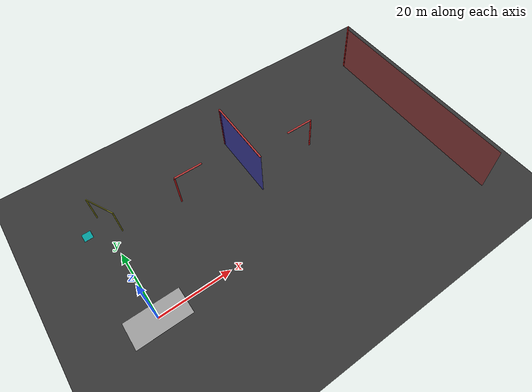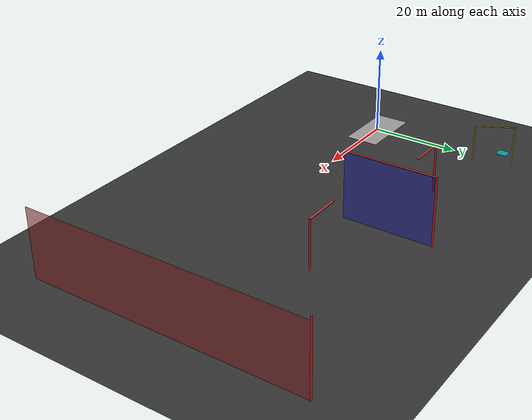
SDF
<sdf version="1.9">
 <world name="goaero_mission3">
  <physics name="1ms" type="ignore">
   <max_step_size>0.001</max_step_size>
   <real_time_factor>1.0</real_time_factor>
  </physics>
  <plugin filename="gz-sim-physics-system" name="gz::sim::systems::Physics"/>
  <plugin filename="gz-sim-sensors-system" name="gz::sim::systems::Sensors">
   <render_engine>ogre2</render_engine>
  </plugin>
  <plugin filename="gz-sim-user-commands-system" name="gz::sim::systems::UserCommands"/>
  <plugin filename="gz-sim-scene-broadcaster-system" name="gz::sim::systems::SceneBroadcaster"/>
  <plugin filename="gz-sim-joint-state-publisher-system" name="gz::sim::systems::JointStatePublisher"/>
  <plugin filename="gz-sim-imu-system" name="gz::sim::systems::Imu"/>
  <plugin filename="gz-sim-navsat-system" name="gz::sim::systems::NavSat"/>
  <plugin filename="gz-sim-particle-emitter-system" name="gz::sim::systems::ParticleEmitter"/>
  <scene><ambient>1.0 1.0 1.0</ambient><background>0.8 0.8 0.8</background></scene>
  <spherical_coordinates>
   <latitude_deg>-35.363262</latitude_deg>
   <longitude_deg>149.165237</longitude_deg>
   <elevation>584</elevation>
   <heading_deg>0</heading_deg>
   <surface_model>EARTH_WGS84</surface_model>
  </spherical_coordinates>
  <light type="directional" name="sun">
   <pose>0 0 10 0 0 0</pose>
   <diffuse>0.8 0.8 0.8 1</diffuse>
   <specular>0.8 0.8 0.8 1</specular>
   <attenuation>
    <range>1000</range>
    <constant>0.9</constant>
    <linear>0.01</linear>
    <quadratic>0.001</quadratic>
   </attenuation>
   <direction>-0.5 0.1 -0.9</direction>
  </light>
  <model name="axes">
   <static>1</static>
   <link name="link">
    <sensor name="navsat_sensor" type="navsat"><always_on>1</always_on><update_rate>60</update_rate></sensor>
   </link>
  </model>
  <model name="The_Base">
   <static>true</static>
   <link name="base_link">
    <visual name="base_visual">
     <geometry><box><size>15.0 7.6 0.02</size></box></geometry>
     <material>
      <script><uri>file://media/materials/scripts/gazebo.material</uri><name>Gazebo/Grey</name></script>
     </material>
    </visual>
    <collision name="base_collision">
     <geometry><box><size>15.0 7.6 0.02</size></box></geometry>
     <pose>0 0 0.01 0 0 0</pose>
    </collision>
   </link>
  </model>
  <model name="obstacle_1_pylon">
   <static>true</static>
   <pose degrees="true">90 40 0 0 0 -90</pose>
   <link name="pylon1_link">
    <visual name="pylon1_visual">
     <geometry><cylinder><radius>0.2</radius><length>16.0</length></cylinder></geometry>
     <pose>0 0 8.0 0 0 0</pose>
     <material><ambient>0.8 0.1 0.1 1</ambient><diffuse>0.8 0.1 0.1 1</diffuse></material>
    </visual>
    <collision name="pylon1_collision">
     <geometry><cylinder><radius>0.2</radius><length>16</length></cylinder></geometry>
     <pose>0 0 8.0 0 0 0</pose>
    </collision>
   </link>
   <link name="pylon1_wall">
    <visual name="pylon1_wall_visual">
     <geometry><box><size>60 0.1 15</size></box></geometry>
     <pose>30 0 7.5 0 0 0</pose>
     <material><ambient>0.7 0.2 0.2 0.6</ambient><diffuse>0.7 0.2 0.2 0.6</diffuse></material>
    </visual>
    <collision name="pylon1_wall_collision">
     <geometry><box><size>40 0.1 15</size></box></geometry>
     <pose>20 0 7.5 0 0 0</pose>
    </collision>
   </link>
  </model>
  <model name="obstacle_2_pylon">
   <static>true</static>
   <pose degrees="true">60 20 0 0 0 180</pose>
   <link name="pylon2_link">
    <visual name="pylon2_visual">
     <geometry><cylinder><radius>0.2</radius><length>11.0</length></cylinder></geometry>
     <pose>0 0 5.5 0 0 0</pose>
     <material><ambient>0.8 0.1 0.1 1</ambient><diffuse>0.8 0.1 0.1 1</diffuse></material>
    </visual>
    <collision name="pylon2_collision">
     <geometry><cylinder><radius>0.2</radius><length>11.0</length></cylinder></geometry>
     <pose>0 0 5.5 0 0 0</pose>
    </collision>
   </link>
   <link name="pylon2_ceiling">
    <visual name="pylon2_ceiling_visual">
     <geometry><box><size>8 0.5 0.1</size></box></geometry>
     <pose>4 0 11.0 0 0 0</pose>
     <material><ambient>0.7 0.2 0.2 1</ambient><diffuse>0.7 0.2 0.2 1</diffuse></material>
    </visual>
    <collision name="pylon2_ceiling_collision">
     <geometry><box><size>8 0.5 0.1</size></box></geometry>
     <pose>4 0 11.0 0 0 0</pose>
    </collision>
   </link>
  </model>
  <model name="obstacle_3_virtual_wall">
   <static>true</static>
   <pose degrees="true">40 25 0 0 0 90</pose>
   <link name="wall_link">
    <visual name="wall_visual">
     <geometry><box><size>20 0.2 15.0</size></box></geometry>
     <pose>0 0 7.5 0 0 0</pose>
     <material><ambient>0.2 0.2 0.8 0.6</ambient><diffuse>0.2 0.2 0.8 0.6</diffuse></material>
    </visual>
    <collision name="wall_collision">
     <geometry><box><size>10.0 0.2 15.0</size></box></geometry>
     <pose>0 0 7.5 0 0 0</pose>
    </collision>
   </link>
   <link name="pylon3_link">
    <visual name="pylon3_visual">
     <geometry><cylinder><radius>0.2</radius><length>15.0</length></cylinder></geometry>
     <pose>10 0 7.5 0 0 0</pose>
     <material><ambient>0.8 0.1 0.1 1</ambient><diffuse>0.8 0.1 0.1 1</diffuse></material>
    </visual>
    <collision name="pylon3_collision">
     <geometry><cylinder><radius>0.2</radius><length>15.0</length></cylinder></geometry>
     <pose>0 0 5.5 0 0 0</pose>
    </collision>
   </link>
   <link name="pylon3_ceiling">
    <visual name="pylon3_ceiling_visual">
     <geometry><box><size>20 0.5 0.1</size></box></geometry>
     <pose>0 0 15.0 0 0 0</pose>
     <material><ambient>0.7 0.2 0.2 1</ambient><diffuse>0.7 0.2 0.2 1</diffuse></material>
    </visual>
    <collision name="pylon3_ceiling_collision">
     <geometry><box><size>20 0.5 0.1</size></box></geometry>
     <pose>0 0 15.0 0 0 0</pose>
    </collision>
   </link>
  </model>
  <model name="obstacle_4_pylon">
   <static>true</static>
   <pose degrees="true">20 25 0 0 0 0</pose>
   <link name="pylon4_link">
    <visual name="pylon4_visual">
     <geometry><cylinder><radius>0.2</radius><length>11.0</length></cylinder></geometry>
     <pose>0 0 5.5 0 0 0</pose>
     <material><ambient>0.8 0.1 0.1 1</ambient><diffuse>0.8 0.1 0.1 1</diffuse></material>
    </visual>
    <collision name="pylon4_collision">
     <geometry><cylinder><radius>0.2</radius><length>11.0</length></cylinder></geometry>
     <pose>0 0 5.5 0 0 0</pose>
    </collision>
   </link>
   <link name="pylon4_ceiling">
    <visual name="pylon4_ceiling_visual">
     <geometry><box><size>8 0.5 0.1</size></box></geometry>
     <pose>4 0 11.0 0 0 0</pose>
     <material><ambient>0.7 0.2 0.2 1</ambient><diffuse>0.7 0.2 0.2 1</diffuse></material>
    </visual>
    <collision name="pylon4_ceiling_collision">
     <geometry><box><size>8 0.5 0.1</size></box></geometry>
     <pose>4 0 11.0 0 0 0</pose>
    </collision>
   </link>
  </model>
  <model name="The_Spot">
   <static>true</static>
   <pose degrees="true">-5 30 0 0 0 90</pose>
   <link name="spot_link">
    <visual name="spot_visual">
     <geometry><box><size>2.4 2.4 0.02</size></box></geometry>
     <pose>0 0 0.01 0 0 0</pose>
     <material><ambient>0.0 0.6 0.6 1</ambient><diffuse>0.0 0.6 0.6 1</diffuse></material>
    </visual>
    <collision name="spot_collision">
     <geometry><box><size>2.4 2.4 0.02</size></box></geometry>
     <pose>-5 0 0.01 0 0 0</pose>
    </collision>
   </link>
  </model>
  <model name="spot_gate">
   <static>true</static>
   <pose degrees="True">1.2 30 0 0 0 90</pose>
   <link name="gate_post_left">
    <visual name="post_left_visual">
     <geometry><cylinder><radius>0.15</radius><length>9.0</length></cylinder></geometry>
     <pose>-4.25 0 4.5 0 0 0</pose>
     <material><ambient>0.6 0.6 0.1 1</ambient><diffuse>0.6 0.6 0.1 1</diffuse></material>
    </visual>
    <collision name="post_left_collision">
     <geometry><cylinder><radius>0.15</radius><length>9.0</length></cylinder></geometry>
     <pose>-4.25 0 4.5 0 0 0</pose>
    </collision>
   </link>
   <link name="gate_post_right">
    <visual name="post_right_visual">
     <geometry><cylinder><radius>0.15</radius><length>9.0</length></cylinder></geometry>
     <pose>4.25 0 4.5 0 0 0</pose>
     <material><ambient>0.6 0.6 0.1 1</ambient><diffuse>0.6 0.6 0.1 1</diffuse></material>
    </visual>
    <collision name="post_right_collision">
     <geometry><cylinder><radius>0.15</radius><length>9.0</length></cylinder></geometry>
     <pose>4.25 0 4.5 0 0 0</pose>
    </collision>
   </link>
   <link name="gate_top">
    <visual name="gate_top_visual">
     <geometry><box><size>8.5 0.2 0.2</size></box></geometry>
     <pose>0 0 9.0 0 0 0</pose>
     <material><ambient>0.7 0.7 0.2 1</ambient><diffuse>0.7 0.7 0.2 1</diffuse></material>
    </visual>
    <collision name="gate_top_collision">
     <geometry><box><size>8.5 0.2 0.2</size></box></geometry>
     <pose>0 0 9.0 0 0 0</pose>
    </collision>
   </link>
  </model>
  <model name="ground_plane">
   <static>true</static>
   <link name="link">
    <collision name="collision">
     <geometry><plane><normal>0 0 1</normal><size>200 120</size></plane></geometry>
    </collision>
    <visual name="visual">
     <geometry><plane><normal>0 0 1</normal><size>200 120</size></plane></geometry>
     <material>
      <ambient>0.8 0.8 0.8 1</ambient>
      <diffuse>0.2 0.2 0.2 1</diffuse>
      <specular>0.8 0.8 0.8 1</specular>
     </material>
    </visual>
    <pose>50 10 0 0 -0 0</pose>
    <inertial>
     <mass>1</mass>
     <inertia><ixx>1</ixx><ixy>0</ixy><ixz>0</ixz><iyy>1</iyy><iyz>0</iyz><izz>1</izz></inertia>
    </inertial>
   </link>
  </model>
 </world>
</sdf>
